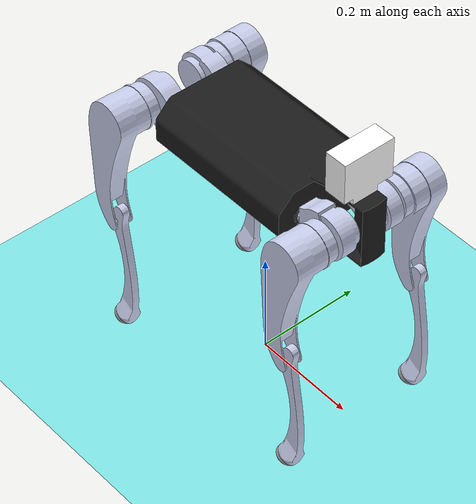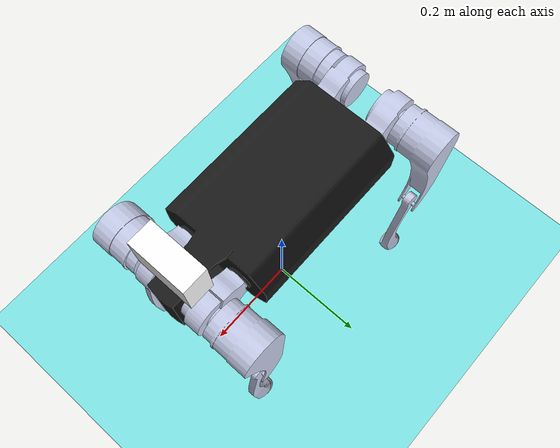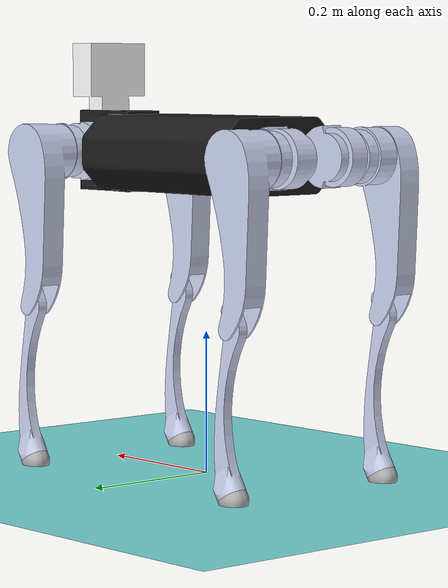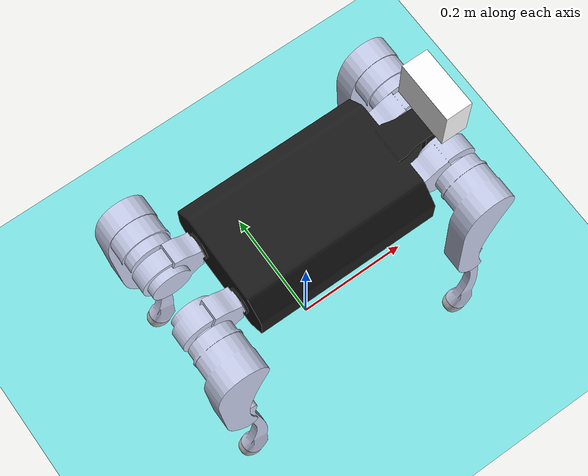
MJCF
<mujoco model="dog">
  <compiler angle="radian" meshdir="../meshes/"/>
  <size njmax="500" nconmax="100"/>
  <option gravity="0 0 -9.81" iterations="50" solver="Newton" timestep="0.005"/>

  <default>
    <geom contype="1" conaffinity="1" friction="0.6 0.3 0.3" margin="0.001" group="0"/>
    <light castshadow="false" diffuse="1 1 1"/>
    <joint damping="0.01" armature="0.01" frictionloss="0.2" />
    <camera fovy="60"/>
  </default>

  <asset>
    <!-- 纹理 -->
    <texture type="skybox" builtin="gradient" rgb1="1.0 1.0 1.0" rgb2="0.6 0.8 1.0" width="512" height="512"/>
    <texture name="plane" type="2d" builtin="flat" rgb1="1 1 1" rgb2="1 1 1" width="512" height="512" mark="cross" markrgb="0 0 0"/>
    <material name="plane" reflectance="0.0" texture="plane" texrepeat="3 3" texuniform="true"/>

    <!-- 机体 mesh -->
    <mesh name="base"     file="base.STL"/>
    <mesh name="ODIN1"    file="ODIN1.STL"/>
    <mesh name="FL_hip"   file="FL_hip.STL"/>
    <mesh name="FL_thigh" file="FL_thigh.STL"/>
    <mesh name="FL_calf"  file="FL_calf.STL"/>
    <mesh name="FL_foot"  file="FL_foot.STL"/>
    <mesh name="FR_hip"   file="FR_hip.STL"/>
    <mesh name="FR_thigh" file="FR_thigh.STL"/>
    <mesh name="FR_calf"  file="FR_calf.STL"/>
    <mesh name="FR_foot"  file="FR_foot.STL"/>
    <mesh name="RR_hip"   file="RR_hip.STL"/>
    <mesh name="RR_thigh" file="RR_thigh.STL"/>
    <mesh name="RR_calf"  file="RR_calf.STL"/>
    <mesh name="RR_foot"  file="RR_foot.STL"/>
    <mesh name="RL_hip"   file="RL_hip.STL"/>
    <mesh name="RL_thigh" file="RL_thigh.STL"/>
    <mesh name="RL_calf"  file="RL_calf.STL"/>
    <mesh name="RL_foot"  file="RR_foot.STL"/>
  </asset>

  <visual>
    <rgba com="0.502 1.0 0 0.5" contactforce="0.98 0.4 0.4 0.7" contactpoint="1.0 1.0 0.6 0.4"/>
    <scale com="0.2" forcewidth="0.035" contactwidth="0.10" contactheight="0.04"/>
  </visual>

  <worldbody>
    <light directional="true" diffuse=".8 .8 .8" pos="0 0 10" dir="0 0 -10"/>
    <camera name="track" mode="trackcom" pos="0 -1.3 1.6" xyaxes="1 0 0 0 0.707 0.707"/>

    <geom name="floor" type="plane" conaffinity="1" condim="3" contype="1" rgba="0.5 0.9 0.9 0.1" material="plane" pos="0 0 0" size="0 0 1"/>

    <!-- ============ 基座 ============ -->
    <body name="trunk" pos="0 0 0.45">
      <inertial pos="0.0063754 0 0" quat="1 0 0 0" mass="4.74" diaginertia="0.018108 0.039024 0.048926"/>
      <joint type="free"/>
      <!-- URDF 中 imu_joint 标记为 dont_collapse，保留其质量和惯量。 -->
      <body name="imu_link" pos="-0.08213 0 -0.033">
        <inertial pos="0 0 0" mass="0.001" diaginertia="0.0001 0.0001 0.0001"/>
      </body>
      <!-- 视觉: mesh -->
      <geom type="mesh" mesh="base" contype="0" conaffinity="0" group="1" rgba="0.10196 0.10196 0.10196 1"/>
      <!-- 碰撞: box -->
      <geom size="0.1531 0.04675 0.052" type="box" rgba="0.10196 0.10196 0.10196 0"/>
      <!-- ODIN1 -->
      <geom type="mesh" mesh="ODIN1" pos="0.21725 0 0.1165" contype="0" conaffinity="0" group="1" rgba="1 1 1 1"/>
      <site name="imu" pos="0 0 0"/>

      <!-- ==================== FL Leg ==================== -->
      <body name="FL_hip" pos="0.2145 0.05 0">
        <inertial pos="-0.010697 -0.0033174 0" quat="0.483303 0.483303 0.516157 0.516157" mass="0.33292" diaginertia="0.000342408 0.00025417 0.000178192"/>
        <joint name="FL_hip_joint" pos="0 0 0" axis="-1 0 0" range="-1.05 1.05" actuatorfrcrange="-17 17"/>
        <!-- 视觉: mesh -->
        <geom type="mesh" mesh="FL_hip" contype="0" conaffinity="0" group="1" rgba="0.79216 0.81961 0.93333 1"/>
        <!-- 碰撞: cylinder (与URDF一致) -->
        <geom size="0.04 0.02" pos="0 0.045 0" quat="0.707105 0.707108 0 0" type="cylinder" rgba="0.79216 0.81961 0.93333 0"/>

        <body name="FL_thigh" pos="0 0.088 0">
          <inertial pos="-0.0069171 -0.014196 -0.040905" quat="0.937237 -0.0612753 -0.0854854 -0.332451" mass="1.5467" diaginertia="0.00673267 0.0061914 0.00123923"/>
          <joint name="FL_thigh_joint" pos="0 0 0" axis="0 -1 0" range="-1.57 3.49" actuatorfrcrange="-17 17"/>
          <geom type="mesh" mesh="FL_thigh" contype="0" conaffinity="0" group="1" rgba="0.79216 0.81961 0.93333 1"/>
          <!-- 碰撞: box (与URDF一致) -->
          <geom size="0.075 0.01225 0.017" pos="0 0 -0.075" quat="0.707105 0 0.707108 0" type="box" rgba="0.79216 0.81961 0.93333 0"/>

          <body name="FL_calf" pos="0 0 -0.22">
            <inertial pos="0.012446 6.1697e-10 -0.11689" mass="0.1266" fullinertia="0.00089879 0.0009089 0.000018028 -1.6714e-11 -0.000037677 4.713e-12"/>
            <joint name="FL_calf_joint" pos="0 0 0" axis="0 1 0" range="-2.72 -1" actuatorfrcrange="-34 34"/>
            <geom type="mesh" mesh="FL_calf" contype="0" conaffinity="0" group="1" rgba="0.79216 0.81961 0.93333 1"/>
            <!-- 碰撞: box (与URDF一致，替代原来的3个cylinder) -->
            <geom size="0.07 0.008 0.008" pos="0 0 -0.07" quat="0.707105 0 0.707108 0" type="box" rgba="0.79216 0.81961 0.93333 0"/>
            <!-- 脚: 视觉mesh + 碰撞sphere -->
            <body name="FL_foot" pos="0 0 -0.22849">
              <inertial pos="-1.5361e-11 9.9171e-11 9.5637e-11" mass="0.03385" fullinertia="4.3616e-06 4.8375e-06 5.3891e-06 1.5524e-12 -9.2947e-07 -7.5217e-13"/>
              <geom type="mesh" mesh="FL_foot" contype="0" conaffinity="0" group="1" rgba="0.69804 0.69804 0.69804 1"/>
              <geom name="FL_foot_col" size="0.02" rgba="0.69804 0.69804 0.69804 0"/>
            </body>
          </body>
        </body>
      </body>

      <!-- ==================== FR Leg ==================== -->
      <body name="FR_hip" pos="0.2145 -0.05 0">
        <inertial pos="-0.010697 0.0033174 0" quat="0.516157 0.516157 0.483303 0.483303" mass="0.33292" diaginertia="0.000342408 0.00025417 0.000178192"/>
        <joint name="FR_hip_joint" pos="0 0 0" axis="-1 0 0" range="-1.05 1.05" actuatorfrcrange="-17 17"/>
        <!-- 视觉: mesh -->
        <geom type="mesh" mesh="FR_hip" contype="0" conaffinity="0" group="1" rgba="0.79216 0.81961 0.93333 1"/>
        <!-- 碰撞: cylinder (与URDF一致) -->
        <geom size="0.04 0.02" pos="0 -0.045 0" quat="0.707105 0.707108 0 0" type="cylinder" rgba="0.79216 0.81961 0.93333 0"/>

        <body name="FR_thigh" pos="0 -0.088 0">
          <inertial pos="-0.0069171 0.014196 -0.040905" quat="0.937237 0.0612753 -0.0854854 0.332451" mass="1.5467" diaginertia="0.00673267 0.0061914 0.00123923"/>
          <joint name="FR_thigh_joint" pos="0 0 0" axis="0 1 0" range="-1.57 3.49" actuatorfrcrange="-17 17"/>
          <geom type="mesh" mesh="FR_thigh" contype="0" conaffinity="0" group="1" rgba="0.79216 0.81961 0.93333 1"/>
          <!-- 碰撞: box (与URDF一致) -->
          <geom size="0.075 0.01225 0.017" pos="0 0 -0.075" quat="0.707105 0 0.707108 0" type="box" rgba="0.79216 0.81961 0.93333 0"/>

          <body name="FR_calf" pos="0 0 -0.22">
            <inertial pos="0.012446 6.1697e-10 -0.11689" mass="0.1266" fullinertia="0.00089879 0.0009089 0.000018028 -1.6714e-11 -0.000037677 4.713e-12"/>
            <joint name="FR_calf_joint" pos="0 0 0" axis="0 -1 0" range="1 2.72" actuatorfrcrange="-34 34"/>
            <geom type="mesh" mesh="FR_calf" contype="0" conaffinity="0" group="1" rgba="0.79216 0.81961 0.93333 1"/>
            <!-- 碰撞: box (与URDF一致，替代原来的3个cylinder) -->
            <geom size="0.07 0.008 0.008" pos="0 0 -0.07" quat="0.707105 0 0.707108 0" type="box" rgba="0.79216 0.81961 0.93333 0"/>
            <!-- 脚: 视觉mesh + 碰撞sphere -->
            <body name="FR_foot" pos="0 0 -0.22849">
              <inertial pos="-6.8027e-11 1.2695e-10 2.7911e-11" mass="0.03385" fullinertia="4.3616e-06 4.8375e-06 5.3891e-06 1.5049e-12 -9.2947e-07 -7.2331e-13"/>
              <geom type="mesh" mesh="FR_foot" contype="0" conaffinity="0" group="1" rgba="0.69804 0.69804 0.69804 1"/>
              <geom name="FR_foot_col" size="0.02" rgba="0.69804 0.69804 0.69804 0"/>
            </body>
          </body>
        </body>
      </body>

      <!-- ==================== RR Leg ==================== -->
      <body name="RR_hip" pos="-0.2145 -0.05 0">
        <inertial pos="0.010697 0.0033174 0" quat="0.483303 0.483303 0.516157 0.516157" mass="0.33292" diaginertia="0.000342408 0.00025417 0.000178192"/>
        <joint name="RR_hip_joint" pos="0 0 0" axis="1 0 0" range="-1.05 1.05" actuatorfrcrange="-17 17"/>
        <!-- 视觉: mesh -->
        <geom type="mesh" mesh="RR_hip" contype="0" conaffinity="0" group="1" rgba="0.79216 0.81961 0.93333 1"/>
        <!-- 碰撞: cylinder (与URDF一致) -->
        <geom size="0.04 0.02" pos="0 -0.045 0" quat="0.707105 0.707108 0 0" type="cylinder" rgba="0.79216 0.81961 0.93333 0"/>

        <body name="RR_thigh" pos="0 -0.088 0">
          <inertial pos="-0.0069171 0.014196 -0.040905" quat="0.937237 0.0612753 -0.0854854 0.332451" mass="1.5467" diaginertia="0.00673267 0.0061914 0.00123923"/>
          <joint name="RR_thigh_joint" pos="0 0 0" axis="0 1 0" range="-1.57 3.49" actuatorfrcrange="-17 17"/>
          <geom type="mesh" mesh="RR_thigh" contype="0" conaffinity="0" group="1" rgba="0.79216 0.81961 0.93333 1"/>
          <!-- 碰撞: box (与URDF一致) -->
          <geom size="0.075 0.01225 0.017" pos="0 0 -0.075" quat="0.707105 0 0.707108 0" type="box" rgba="0.79216 0.81961 0.93333 0"/>

          <body name="RR_calf" pos="0 0 -0.22">
            <inertial pos="0.012446 6.1697e-10 -0.11689" mass="0.1266" fullinertia="0.00089879 0.0009089 0.000018028 -1.6714e-11 -0.000037677 4.713e-12"/>
            <joint name="RR_calf_joint" pos="0 0 0" axis="0 -1 0" range="1 2.72" actuatorfrcrange="-34 34"/>
            <geom type="mesh" mesh="RR_calf" contype="0" conaffinity="0" group="1" rgba="0.79216 0.81961 0.93333 1"/>
            <!-- 碰撞: box (与URDF一致，替代原来的3个cylinder) -->
            <geom size="0.07 0.008 0.008" pos="0 0 -0.07" quat="0.707105 0 0.707108 0" type="box" rgba="0.79216 0.81961 0.93333 0"/>
            <!-- 脚: 视觉mesh + 碰撞sphere -->
            <body name="RR_foot" pos="0 0 -0.22849">
              <inertial pos="-6.8027e-11 1.2695e-10 2.7911e-11" mass="0.03385" fullinertia="4.3616e-06 4.8375e-06 5.3891e-06 1.5049e-12 -9.2947e-07 -7.2331e-13"/>
              <geom type="mesh" mesh="RR_foot" contype="0" conaffinity="0" group="1" rgba="0.69804 0.69804 0.69804 1"/>
              <geom name="RR_foot_col" size="0.02" rgba="0.69804 0.69804 0.69804 0"/>
            </body>
          </body>
        </body>
      </body>

      <!-- ==================== RL Leg ==================== -->
      <body name="RL_hip" pos="-0.2145 0.05 0">
        <inertial pos="0.010697 -0.0033174 0" quat="0.516157 0.516157 0.483303 0.483303" mass="0.33292" diaginertia="0.000342408 0.00025417 0.000178192"/>
        <joint name="RL_hip_joint" pos="0 0 0" axis="1 0 0" range="-1.05 1.05" actuatorfrcrange="-17 17"/>
        <!-- 视觉: mesh -->
        <geom type="mesh" mesh="RL_hip" contype="0" conaffinity="0" group="1" rgba="0.79216 0.81961 0.93333 1"/>
        <!-- 碰撞: cylinder (与URDF一致) -->
        <geom size="0.04 0.02" pos="0 0.045 0" quat="0.707105 0.707108 0 0" type="cylinder" rgba="0.79216 0.81961 0.93333 0"/>

        <body name="RL_thigh" pos="0 0.088 0">
          <inertial pos="-0.0069171 -0.014196 -0.040905" quat="0.937237 -0.0612753 -0.0854854 -0.332451" mass="1.5467" diaginertia="0.00673267 0.0061914 0.00123923"/>
          <joint name="RL_thigh_joint" pos="0 0 0" axis="0 -1 0" range="-1.57 3.49" actuatorfrcrange="-17 17"/>
          <geom type="mesh" mesh="RL_thigh" contype="0" conaffinity="0" group="1" rgba="0.79216 0.81961 0.93333 1"/>
          <!-- 碰撞: box (与URDF一致) -->
          <geom size="0.075 0.01225 0.017" pos="0 0 -0.075" quat="0.707105 0 0.707108 0" type="box" rgba="0.79216 0.81961 0.93333 0"/>

          <body name="RL_calf" pos="0 0 -0.22">
            <inertial pos="0.012446 6.1697e-10 -0.11689" mass="0.1266" fullinertia="0.00089879 0.0009089 0.000018028 -1.6714e-11 -0.000037677 4.713e-12"/>
            <joint name="RL_calf_joint" pos="0 0 0" axis="0 1 0" range="-2.72 -1" actuatorfrcrange="-34 34"/>
            <geom type="mesh" mesh="RL_calf" contype="0" conaffinity="0" group="1" rgba="0.79216 0.81961 0.93333 1"/>
            <!-- 碰撞: box (与URDF一致，替代原来的3个cylinder) -->
            <geom size="0.07 0.008 0.008" pos="0 0 -0.07" quat="0.707105 0 0.707108 0" type="box" rgba="0.79216 0.81961 0.93333 0"/>
            <!-- 脚: 视觉mesh + 碰撞sphere -->
            <body name="RL_foot" pos="0 0 -0.22849">
              <inertial pos="-5.3573e-06 8.9644e-11 0" mass="0.03385" fullinertia="4.3616e-06 4.8375e-06 5.3891e-06 1.5512e-12 -9.2947e-07 -7.5287e-13"/>
              <geom type="mesh" mesh="RL_foot" contype="0" conaffinity="0" group="1" rgba="0.69804 0.69804 0.69804 1"/>
              <geom name="RL_foot_col" size="0.02" rgba="0.69804 0.69804 0.69804 0"/>
            </body>
          </body>
        </body>
      </body>

    </body><!-- end trunk -->
  </worldbody>

  <!-- ============ Actuators (FL, FR, RR, RL = 与URDF/Isaac一致) ============ -->
  <actuator>
    <motor name="FL_hip"   gear="1" joint="FL_hip_joint"   ctrlrange="-23.7 23.7"   ctrllimited="true"/>
    <motor name="FL_thigh" gear="1" joint="FL_thigh_joint" ctrlrange="-23.7 23.7"   ctrllimited="true"/>
    <motor name="FL_calf"  gear="1" joint="FL_calf_joint"  ctrlrange="-35.55 35.55" ctrllimited="true"/>
    <motor name="FR_hip"   gear="1" joint="FR_hip_joint"   ctrlrange="-23.7 23.7"   ctrllimited="true"/>
    <motor name="FR_thigh" gear="1" joint="FR_thigh_joint" ctrlrange="-23.7 23.7"   ctrllimited="true"/>
    <motor name="FR_calf"  gear="1" joint="FR_calf_joint"  ctrlrange="-35.55 35.55" ctrllimited="true"/>
    <motor name="RR_hip"   gear="1" joint="RR_hip_joint"   ctrlrange="-23.7 23.7"   ctrllimited="true"/>
    <motor name="RR_thigh" gear="1" joint="RR_thigh_joint" ctrlrange="-23.7 23.7"   ctrllimited="true"/>
    <motor name="RR_calf"  gear="1" joint="RR_calf_joint"  ctrlrange="-35.55 35.55" ctrllimited="true"/>
    <motor name="RL_hip"   gear="1" joint="RL_hip_joint"   ctrlrange="-23.7 23.7"   ctrllimited="true"/>
    <motor name="RL_thigh" gear="1" joint="RL_thigh_joint" ctrlrange="-23.7 23.7"   ctrllimited="true"/>
    <motor name="RL_calf"  gear="1" joint="RL_calf_joint"  ctrlrange="-35.55 35.55" ctrllimited="true"/>
  </actuator>

  <!-- ============ Sensors ============ -->
  <sensor>
    <jointpos name="FL_hip_pos"   joint="FL_hip_joint"/>
    <jointpos name="FL_thigh_pos" joint="FL_thigh_joint"/>
    <jointpos name="FL_calf_pos"  joint="FL_calf_joint"/>
    <jointpos name="FR_hip_pos"   joint="FR_hip_joint"/>
    <jointpos name="FR_thigh_pos" joint="FR_thigh_joint"/>
    <jointpos name="FR_calf_pos"  joint="FR_calf_joint"/>
    <jointpos name="RR_hip_pos"   joint="RR_hip_joint"/>
    <jointpos name="RR_thigh_pos" joint="RR_thigh_joint"/>
    <jointpos name="RR_calf_pos"  joint="RR_calf_joint"/>
    <jointpos name="RL_hip_pos"   joint="RL_hip_joint"/>
    <jointpos name="RL_thigh_pos" joint="RL_thigh_joint"/>
    <jointpos name="RL_calf_pos"  joint="RL_calf_joint"/>

    <jointvel name="FL_hip_vel"   joint="FL_hip_joint"/>
    <jointvel name="FL_thigh_vel" joint="FL_thigh_joint"/>
    <jointvel name="FL_calf_vel"  joint="FL_calf_joint"/>
    <jointvel name="FR_hip_vel"   joint="FR_hip_joint"/>
    <jointvel name="FR_thigh_vel" joint="FR_thigh_joint"/>
    <jointvel name="FR_calf_vel"  joint="FR_calf_joint"/>
    <jointvel name="RR_hip_vel"   joint="RR_hip_joint"/>
    <jointvel name="RR_thigh_vel" joint="RR_thigh_joint"/>
    <jointvel name="RR_calf_vel"  joint="RR_calf_joint"/>
    <jointvel name="RL_hip_vel"   joint="RL_hip_joint"/>
    <jointvel name="RL_thigh_vel" joint="RL_thigh_joint"/>
    <jointvel name="RL_calf_vel"  joint="RL_calf_joint"/>

    <accelerometer name="Body_Acc"  site="imu"/>
    <gyro          name="Body_Gyro" site="imu"/>
    <framepos      name="Body_Pos"  objtype="site" objname="imu"/>
    <framequat     name="Body_Quat" objtype="site" objname="imu"/>
  </sensor>
</mujoco>
